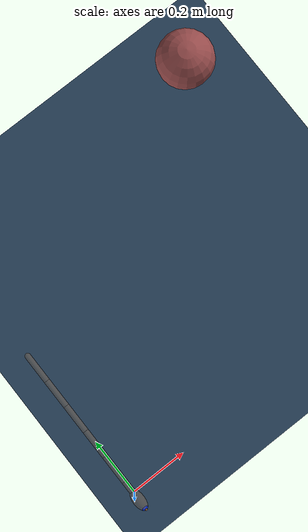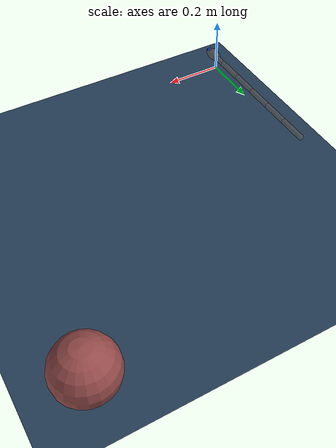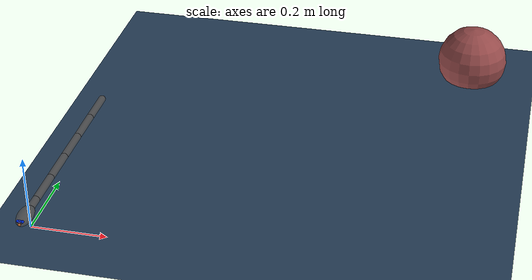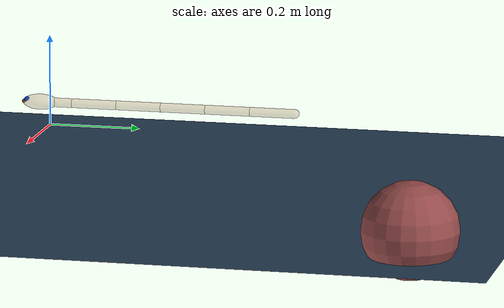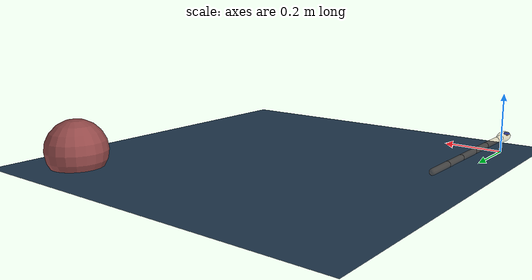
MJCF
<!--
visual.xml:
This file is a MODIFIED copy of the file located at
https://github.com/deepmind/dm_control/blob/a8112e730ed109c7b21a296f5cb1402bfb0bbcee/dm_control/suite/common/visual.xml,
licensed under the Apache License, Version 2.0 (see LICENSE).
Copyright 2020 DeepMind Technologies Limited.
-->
<mujoco model="swimmer">
    <include file="./common/visual.xml" />
    <include file="./common/skybox.xml" />
    <include file="./common/materials.xml" />

    <option timestep="0.002" density="3000">
        <flag contact="disable" />
    </option>

    <default>
        <default class="swimmer">
            <joint type="hinge" pos="0 -.05 0" axis="0 0 1" limited="true" solreflimit=".05 1" solimplimit="0 .8 .1" armature="1e-6" />
            <default class="inertial">
                <geom type="box" size=".001 .05 .01" rgba="0 0 0 0" mass=".01" />
            </default>
            <default class="visual">
                <geom type="capsule" size=".01" fromto="0 -.05 0 0 .05 0" material="self" mass="0" />
            </default>
            <site size=".01" rgba="0 0 0 0" />
        </default>
        <default class="free">
            <joint limited="false" stiffness="0" armature="0" />
        </default>
        <motor gear="5e-4" ctrllimited="true" ctrlrange="-1 1" />
    </default>

    <worldbody>
        <geom name="ground" type="plane" size="2 2 0.1" material="grid" />
        <body name="head" pos="0 0 .05" childclass="swimmer">
            <light name="light_1" diffuse=".8 .8 .8" pos="0 0 1.5" />
            <geom name="head" type="ellipsoid" size=".02 .04 .017" pos="0 -.022 0" material="self" mass="0" />
            <geom name="nose" type="sphere" pos="0 -.06 0" size=".004" material="effector" mass="0" />
            <geom name="eyes" type="capsule" fromto="-.006 -.054 .005 .006 -.054 .005" size=".004" material="eye" mass="0" />
            <camera name="tracking1" pos="0.0 -0.2 0.5" xyaxes="1 0 0 0 1 1" mode="trackcom" fovy="60" />
            <camera name="tracking2" pos="-0.9 0.5 0.15" xyaxes="0 -1 0 .3 0 1" mode="trackcom" fovy="60" />
            <camera name="eyes" pos="0 -.058 .005" xyaxes="-1 0 0 0 0 1" />
            <joint name="rootx" class="free" type="slide" axis="1 0 0" pos="0 -.05 0" />
            <joint name="rooty" class="free" type="slide" axis="0 1 0" pos="0 -.05 0" />
            <joint name="rootz" class="free" type="hinge" axis="0 0 1" pos="0 -.05 0" />
            <geom name="inertial" class="inertial" />
            <geom name="visual" class="visual" />
            <site name="head" />
            <body name="segment_0" pos="0 .1 0">
                <geom class="visual" name="visual_0" />
                <geom class="inertial" name="inertial_0" />
                <site name="site_0" />
                <joint name="joint_0" range="-60.0 60.0" />
                <body name="segment_1" pos="0 .1 0">
                    <geom class="visual" name="visual_1" />
                    <geom class="inertial" name="inertial_1" />
                    <site name="site_1" />
                    <joint name="joint_1" range="-60.0 60.0" />
                    <body name="segment_2" pos="0 .1 0">
                        <geom class="visual" name="visual_2" />
                        <geom class="inertial" name="inertial_2" />
                        <site name="site_2" />
                        <joint name="joint_2" range="-60.0 60.0" />
                        <body name="segment_3" pos="0 .1 0">
                            <geom class="visual" name="visual_3" />
                            <geom class="inertial" name="inertial_3" />
                            <site name="site_3" />
                            <joint name="joint_3" range="-60.0 60.0" />
                            <body name="segment_4" pos="0 .1 0">
                                <geom class="visual" name="visual_4" />
                                <geom class="inertial" name="inertial_4" />
                                <site name="site_4" />
                                <joint name="joint_4" range="-60.0 60.0" />
                            </body>
                        </body>
                    </body>
                </body>
            </body>
        </body>
        <geom name="target" type="sphere" pos="1 1 .05" size=".1" material="target" />
        <light name="target_light" diffuse="1 1 1" pos="1 1 1.5" />
    </worldbody>

    <sensor>
        <framepos name="nose_pos" objtype="geom" objname="nose" />
        <framepos name="target_pos" objtype="geom" objname="target" />
        <framexaxis name="head_xaxis" objtype="xbody" objname="head" />
        <frameyaxis name="head_yaxis" objtype="xbody" objname="head" />
        <velocimeter name="head_vel" site="head" />
        <gyro name="head_gyro" site="head" />
    </sensor>

    <actuator>
        <motor name="motor_0" joint="joint_0" />
        <motor name="motor_1" joint="joint_1" />
        <motor name="motor_2" joint="joint_2" />
        <motor name="motor_3" joint="joint_3" />
        <motor name="motor_4" joint="joint_4" />
    </actuator>
    <sensor>
        <velocimeter name="velocimeter_0" site="site_0" />
        <gyro name="gyro_0" site="site_0" />
        <velocimeter name="velocimeter_1" site="site_1" />
        <gyro name="gyro_1" site="site_1" />
        <velocimeter name="velocimeter_2" site="site_2" />
        <gyro name="gyro_2" site="site_2" />
        <velocimeter name="velocimeter_3" site="site_3" />
        <gyro name="gyro_3" site="site_3" />
        <velocimeter name="velocimeter_4" site="site_4" />
        <gyro name="gyro_4" site="site_4" />
    </sensor>
</mujoco>

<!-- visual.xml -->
<mujoco>
  <visual>
    <headlight ambient=".4 .4 .4" diffuse=".8 .8 .8" specular="0.1 0.1 0.1"/>
    <map znear=".01"/>
    <quality shadowsize="2048"/>
  </visual>
</mujoco>

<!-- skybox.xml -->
<mujoco>
  <asset>
      <texture name="skybox" type="skybox" builtin="gradient" rgb1=".4 .6 .8" rgb2="0 0 0"
               width="800" height="800" mark="random" markrgb="1 1 1"/>
  </asset>
</mujoco>

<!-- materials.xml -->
<!--
Common textures, colors and materials to be used throughout this suite. Some
materials such as xxx_highlight are activated on occurence of certain events,
for example receiving a positive reward.
-->
<mujoco>
  <asset>
    <texture name="board" type="2d" builtin="flat" width="300" height="300"/>
    <material name="board" texture="board" reflectance=".2"/>
    <texture name="grid" type="2d" builtin="checker" rgb1=".1 .2 .3" rgb2=".2 .3 .4" width="300" height="300" mark="edge" markrgb=".2 .3 .4"/>
    <material name="grid" texture="grid" texrepeat="1 1" texuniform="true" reflectance=".2"/>
    <material name="self" rgba=".7 .5 .3 0.3"/>
    <material name="self_default" rgba=".7 .5 .3 0.3"/>
    <material name="self_highlight" rgba="0 .5 .3 0.3"/>
    <material name="effector" rgba=".7 .4 .2 1"/>
    <material name="effector_default" rgba=".7 .4 .2 1"/>
    <material name="effector_highlight" rgba="0 .5 .3 1"/>
    <material name="decoration" rgba=".3 .5 .7 1"/>
    <material name="rootjoint" rgba=".3 .5 .7 0"/>
    <material name="eye" rgba="0 .2 1 1"/>
    <material name="target" rgba=".6 .3 .3 1"/>
    <material name="target_default" rgba=".6 .3 .3 1"/>
    <material name="target_highlight" rgba=".6 .3 .3 .4"/>
    <material name="site" rgba=".5 .5 .5 .3"/>
  </asset>
</mujoco>
